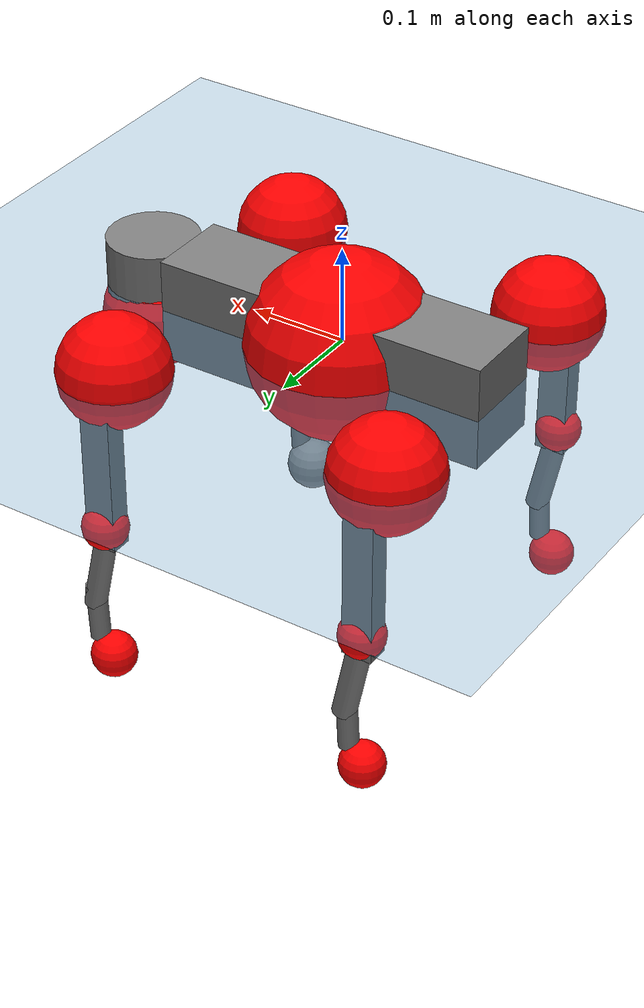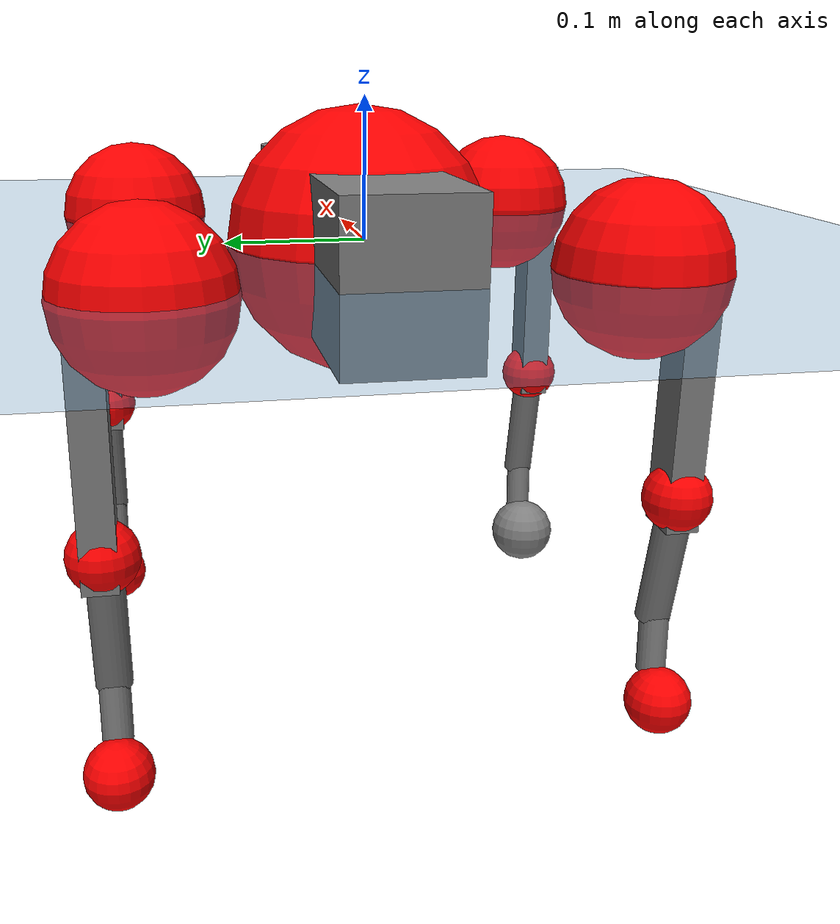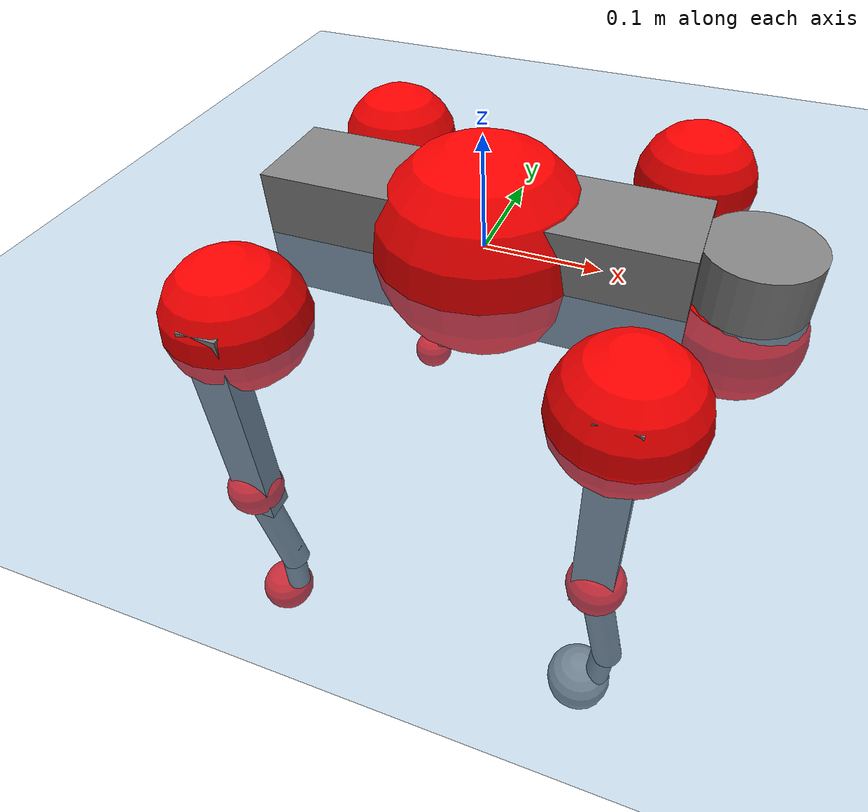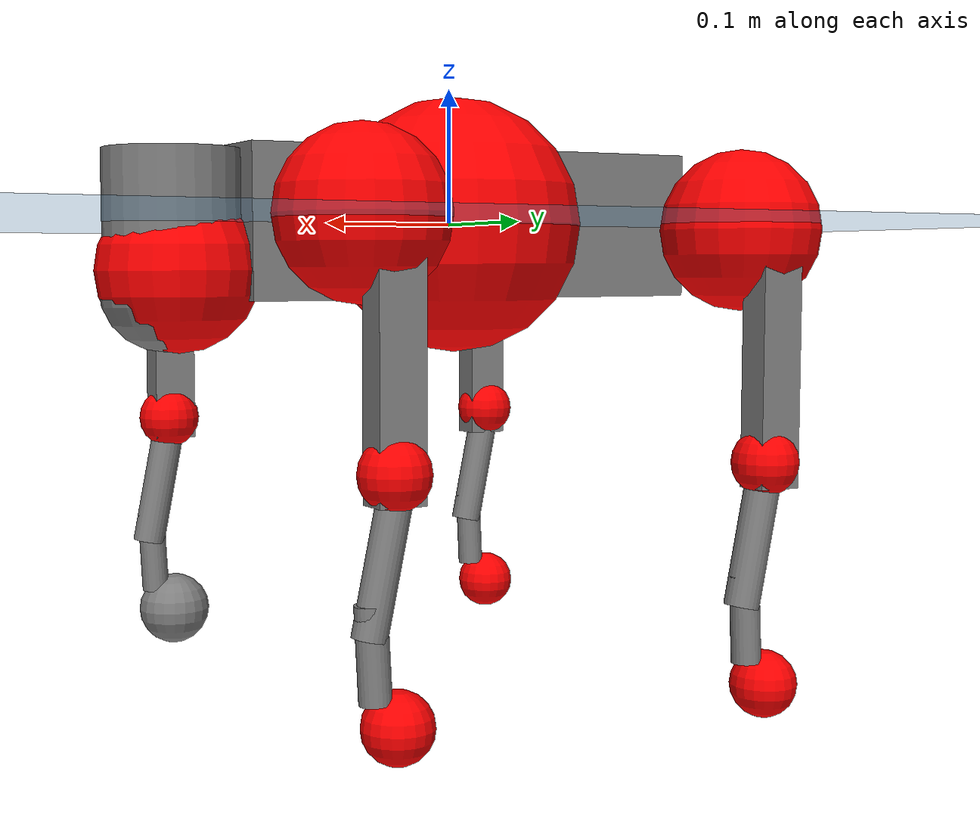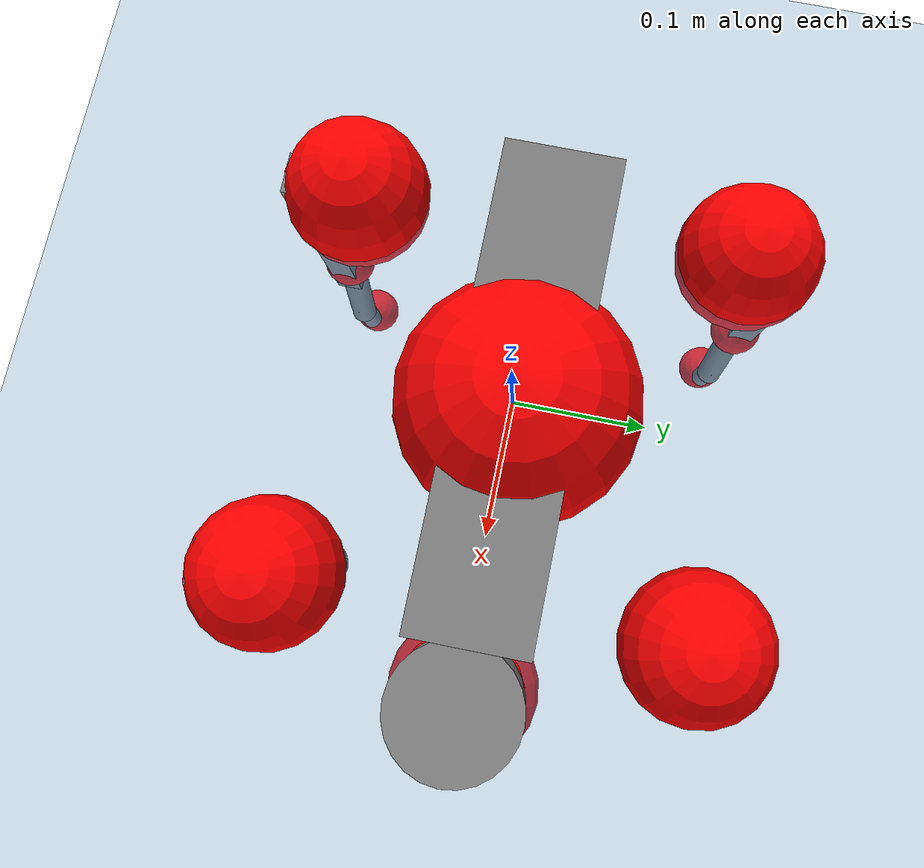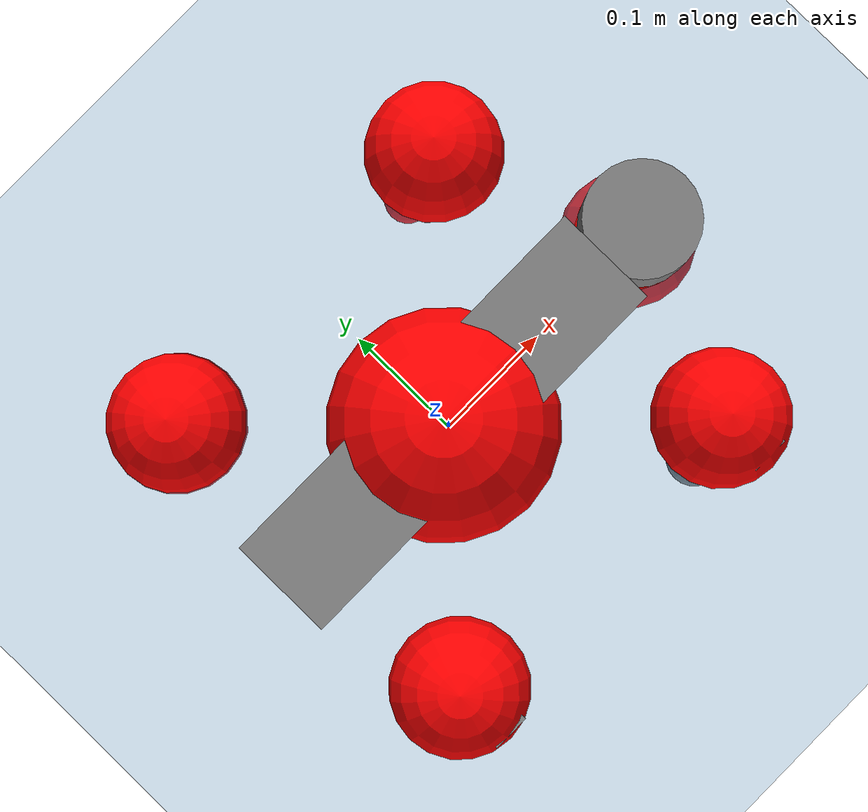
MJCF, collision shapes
<mujoco model="go2">
  <compiler angle="radian" assetdir="assets" balanceinertia="true" inertiafromgeom="false"/>

  <option timestep="0.005" density="1.2" viscosity="2e-05"/>

  <size nkey="1"/>

  <visual>
    <quality shadowsize="8192"/>
    <map shadowclip="0.5"/>
  </visual>

  <default>
    <default class="/">
      <geom contype="0" conaffinity="0" group="1" solref="-1000 -80"/>
      <site size="0.01 0.005 0.005" group="5"/>
      <general forcelimited="true" biastype="affine" gainprm="20" biasprm="0 -20 -0.5"/>
      <default class="go2">
        <joint armature="0.01" damping="0.01" frictionloss="0.2"/>
        <geom condim="1" margin="0.001"/>
        <default class="visual">
          <geom type="mesh" group="2"/>
        </default>
        <default class="collision">
          <geom group="3"/>
          <default class="foot">
            <geom size="0.022 0 0" condim="6" priority="1" friction="0.8 0.02 0.01" solimp="0.015 1 0.022"/>
          </default>
        </default>
        <default class="reward_collision_sphere">
          <geom group="5" rgba="1 0 0 1"/>
        </default>
      </default>
    </default>
  </default>

  <asset>
    <texture type="skybox" colorspace="auto" name="//unnamed_texture_0" builtin="gradient" rgb1="0.95 0.95 0.95" rgb2="0.95 0.95 0.95" width="100" height="600"/>
    <texture type="2d" colorspace="auto" name="texplane" builtin="checker" rgb1="0.345 0.575 0.748" rgb2="0.345 0.575 0.748" markrgb="1 1 1" width="512" height="512"/>
    <material name="MatPlane" class="/" texture="texplane" texuniform="true" texrepeat="2 2" specular="0.9"/>
    <material name="metal" class="/" rgba="0.9 0.95 0.95 1"/>
    <material name="black" class="/" rgba="0 0 0 1"/>
    <material name="white" class="/"/>
    <material name="gray" class="/" rgba="0.671705 0.692426 0.77427 1"/>
    <mesh name="base_0" class="/" file="base_0.obj"/>
    <mesh name="base_1" class="/" file="base_1.obj"/>
    <mesh name="base_2" class="/" file="base_2.obj"/>
    <mesh name="base_3" class="/" file="base_3.obj"/>
    <mesh name="base_4" class="/" file="base_4.obj"/>
    <mesh name="hip_0" class="/" file="hip_0.obj"/>
    <mesh name="hip_1" class="/" file="hip_1.obj"/>
    <mesh name="thigh_0" class="/" file="thigh_0.obj"/>
    <mesh name="thigh_1" class="/" file="thigh_1.obj"/>
    <mesh name="thigh_mirror_0" class="/" file="thigh_mirror_0.obj"/>
    <mesh name="thigh_mirror_1" class="/" file="thigh_mirror_1.obj"/>
    <mesh name="calf_0" class="/" file="calf_0.obj"/>
    <mesh name="calf_1" class="/" file="calf_1.obj"/>
    <mesh name="calf_mirror_0" class="/" file="calf_mirror_0.obj"/>
    <mesh name="calf_mirror_1" class="/" file="calf_mirror_1.obj"/>
    <mesh name="foot" class="/" file="foot.obj"/>
  </asset>

  <worldbody>
    <geom name="floor" class="/" size="100 100 0.125" type="plane" group="0" material="MatPlane"/>
    <light name="toplight_shadow" class="/" pos="0 0 5" dir="0.0990148 0.0990148 -0.990148" type="directional" ambient="0.04 0.04 0.04" diffuse="0.55 0.55 0.55" specular="0.12 0.12 0.12"/>
    <light name="toplight_fill" class="/" pos="0 0 5" dir="0.0990148 0.0990148 -0.990148" type="directional" castshadow="false" ambient="0.04 0.04 0.04" diffuse="0.3 0.3 0.3" specular="0.08 0.08 0.08"/>
    <body name="trunk" childclass="go2" pos="-0.00130262 0.00403288 -2.16503e-05" quat="0.999998 0.000985627 0.00164298 0.000716817">
      <inertial pos="0.0188252 0.00885282 -0.00841656" quat="-0.0123677 0.709424 0.00113957 0.704672" mass="5.99775" diaginertia="0.0346819 0.451619 0.00524318"/>
      <joint name="//unnamed_joint_0" type="free" armature="0" damping="0" frictionloss="0"/>
      <geom name="//unnamed_geom_1" class="visual" material="black" mesh="base_0"/>
      <geom name="//unnamed_geom_2" class="visual" material="black" mesh="base_1"/>
      <geom name="//unnamed_geom_3" class="visual" material="black" mesh="base_2"/>
      <geom name="//unnamed_geom_4" class="visual" material="white" mesh="base_3"/>
      <geom name="//unnamed_geom_5" class="visual" material="gray" mesh="base_4"/>
      <geom name="trunk_1" class="collision" size="0.177348 0.0440777 0.0537417" type="box"/>
      <geom name="trunk_2" class="collision" size="0.0471419 0.0424277" pos="0.21833 0 0.00731447" type="cylinder"/>
      <geom name="trunk_3" class="collision" size="0.0443134" pos="0.224459 0 -0.0438868"/>
      <geom name="//unnamed_geom_9" class="reward_collision_sphere" size="0.0942838"/>
      <geom name="//unnamed_geom_10" class="reward_collision_sphere" size="0.0565703" pos="0.2145 0 -0.0329151"/>
      <site name="imu" pos="-0.0295489 0.0100046 0.0409393" size="0.00942838"/>
      <camera name="track" pos="0 -2.66199 0" quat="0.707107 0.707107 0 0" mode="trackcom"/>
      <camera name="ego_camera" pos="0.239014 0 0.0329151" quat="-0.5 -0.5 0.5 0.5"/>
      <body name="FL_hip" pos="0.14986 0.0644076 0.00190804" quat="0.999999 0.00106457 -0.000314155 -3.05647e-05">
        <inertial pos="-0.0049627 0.00872358 0.00247948" quat="0.486454 0.463516 0.517074 0.530236" mass="0.58814" diaginertia="0.0002306 0.00257908 9.94626e-05"/>
        <joint name="FL_hip_joint" pos="0 0 0" axis="0.999884 0.00862755 0.0125457" range="-0.999652 1.01671" armature="0.00890699" damping="0.0232801" frictionloss="0.180397"/>
        <geom name="//unnamed_geom_11" class="visual" material="metal" mesh="hip_0"/>
        <geom name="//unnamed_geom_12" class="visual" material="gray" mesh="hip_1"/>
        <geom name="//unnamed_geom_13" class="collision" size="0.0433705 0.0188568" pos="0 0.10648 0" quat="0.707107 0.707107 0 0" type="cylinder"/>
        <geom name="//unnamed_geom_14" class="reward_collision_sphere" size="0.0565703" pos="0 0.0931696 0"/>
        <body name="FL_thigh" pos="-0.00580905 0.12473 0.00081035" quat="0.999989 -0.00146222 -0.00164804 0.00409393">
          <inertial pos="-0.0049598 -0.0390045 -0.025507" quat="0.827364 0.0824818 -0.0187503 0.555261" mass="0.946722" diaginertia="0.00172643 0.0219915 0.000186981"/>
          <joint name="FL_thigh_joint" pos="0 0 0" axis="-0.0010041 0.999766 -0.0215916" range="-1.48627 3.64748" armature="0.00528613" damping="0.0194363" frictionloss="0.21448"/>
          <geom name="//unnamed_geom_15" class="visual" material="metal" mesh="thigh_0"/>
          <geom name="//unnamed_geom_16" class="visual" material="gray" mesh="thigh_1"/>
          <geom name="//unnamed_geom_17" class="collision" size="0.100412 0.0115498 0.0160282" pos="0 0 -0.0778991" quat="0.707107 0 0.707107 0" type="box"/>
          <body name="FL_calf" pos="0.000857488 0.00139046 -0.159269" quat="0.999999 0.000330384 0.000792503 0.000548007">
            <inertial pos="0.0118838 0.00268877 -0.0976238" quat="0.708885 0.00106802 -0.00508857 0.705305" mass="0.210427" diaginertia="0.000407516 0.00576405 1.13343e-05"/>
            <joint name="FL_calf_joint" pos="0 0 0" axis="-0.000513773 0.999971 -0.00764491" range="-2.91008 -0.951457" armature="0.0108067" damping="0.0393026" frictionloss="0.186869"/>
            <geom name="//unnamed_geom_18" class="visual" material="gray" mesh="calf_0"/>
            <geom name="//unnamed_geom_19" class="visual" material="black" mesh="calf_1"/>
            <geom name="FL_calf0" class="collision" size="0.0113141 0.0565703" pos="0.00612857 0 -0.0438868" quat="0.994493 0 -0.104807 0" type="cylinder"/>
            <geom name="//unnamed_geom_21" class="collision" size="0.0103712 0.0306422" pos="0.0153214 0 -0.108254" quat="0.999688 0 0.0249974 0" type="cylinder"/>
            <geom name="//unnamed_geom_22" class="visual" pos="0 0 -0.155798" quat="1 0 0 0" material="black" mesh="foot"/>
            <geom name="FL_foot" class="foot" size="0.0222176" pos="-0.00153214 0 -0.155798"/>
            <geom name="//unnamed_geom_24" class="reward_collision_sphere" size="0.0235709"/>
            <geom name="//unnamed_geom_25" class="reward_collision_sphere" size="0.0235709" pos="-0.00153214 0 -0.155798"/>
            <site name="FL_foot" class="foot" pos="-0.00153214 0 -0.155798" size="0.00942838"/>
          </body>
        </body>
      </body>
      <body name="FR_hip" pos="0.157187 -0.0598229 0.00325544" quat="1 -0.000605679 0.000414168 0.000319013">
        <inertial pos="-0.00580167 -0.00333715 0.000834409" quat="0.479809 0.522202 0.518512 0.477739" mass="0.584128" diaginertia="0.000250886 0.0024866 0.000101768"/>
        <joint name="FR_hip_joint" pos="0 0 0" axis="0.999886 -0.000359615 0.0151271" stiffness="0.0496879" range="-1.00902 0.916565" armature="0.0100171" damping="0.0280136" frictionloss="0.19161"/>
        <geom name="//unnamed_geom_26" class="visual" pos="0 5.22301e-09 2.24026e-07" quat="4.63268e-05 1 0 0" material="metal" mesh="hip_0"/>
        <geom name="//unnamed_geom_27" class="visual" pos="0 8.46713e-09 -5.54101e-07" quat="4.63268e-05 1 0 0" material="gray" mesh="hip_1"/>
        <geom name="//unnamed_geom_28" class="collision" size="0.0433705 0.0188568" pos="0 -0.10648 0" quat="0.707107 0.707107 0 0" type="cylinder"/>
        <geom name="//unnamed_geom_29" class="reward_collision_sphere" size="0.0565703" pos="0 -0.0931696 0"/>
        <body name="FR_thigh" pos="0.000855887 -0.127129 0.00812719" quat="1 -0.000116576 -1.96435e-05 -2.27983e-06">
          <inertial pos="-0.00508245 0.0334214 -0.0317596" quat="0.551017 -0.0198622 0.082448 0.830173" mass="0.973076" diaginertia="0.00165696 0.0244637 0.0001844"/>
          <joint name="FR_thigh_joint" pos="0 0 0" axis="0.00710358 -0.999968 -0.00359152" range="-3.52707 1.56125" armature="0.0125066" damping="0" frictionloss="0.221182"/>
          <geom name="//unnamed_geom_30" class="visual" material="metal" mesh="thigh_mirror_0"/>
          <geom name="//unnamed_geom_31" class="visual" material="gray" mesh="thigh_mirror_1"/>
          <geom name="//unnamed_geom_32" class="collision" size="0.100412 0.0115498 0.0160282" pos="0 0 -0.0778991" quat="0.707107 0 0.707107 0" type="box"/>
          <body name="FR_calf" pos="0.00165849 -0.000304756 -0.162732" quat="1 -0.000155629 0.000559202 -0.000120779">
            <inertial pos="0.00833172 -0.00307143 -0.10223" quat="0.706015 -0.00344581 -0.00331193 0.70818" mass="0.179793" diaginertia="0.000351888 0.00510848 1.0255e-05"/>
            <joint name="FR_calf_joint" pos="0 0 0" axis="0.013184 -0.999904 0.0042685" stiffness="0.00108172" range="0.834379 2.73102" armature="0.00870101" damping="0.0484467" frictionloss="0.194531"/>
            <geom name="//unnamed_geom_33" class="visual" material="gray" mesh="calf_mirror_0"/>
            <geom name="//unnamed_geom_34" class="visual" material="black" mesh="calf_mirror_1"/>
            <geom name="FR_calf0" class="collision" size="0.0122569 0.0565703" pos="0.00766071 0 -0.0438868" quat="0.995004 0 -0.0998334 0" type="cylinder"/>
            <geom name="//unnamed_geom_36" class="collision" size="0.0103712 0.0306422" pos="0.0153214 0 -0.108254" quat="0.999688 0 0.0249974 0" type="cylinder"/>
            <geom name="//unnamed_geom_37" class="visual" pos="0 0 -0.155798" quat="1 0 0 0" material="black" mesh="foot"/>
            <geom name="FR_foot" class="foot" size="0.0277726" pos="-0.00153214 0 -0.155798"/>
            <geom name="//unnamed_geom_39" class="reward_collision_sphere" size="0.0235709"/>
            <geom name="//unnamed_geom_40" class="reward_collision_sphere" size="0.0235709" pos="-0.00153214 0 -0.155798"/>
            <site name="FR_foot" class="foot" pos="-0.00153214 0 -0.155798" size="0.00942838"/>
          </body>
        </body>
      </body>
      <body name="RL_hip" pos="-0.147262 0.0595704 -0.00601047" quat="0.999999 -0.000409977 -0.000884201 0.000409951">
        <inertial pos="0.00526862 0.00160385 -0.00350441" quat="0.509168 0.496233 0.496525 0.49796" mass="0.642681" diaginertia="0.000232075 0.00258246 9.7969e-05"/>
        <joint name="RL_hip_joint" pos="0 0 0" axis="-0.999997 -0.00182953 -0.00170268" range="-1.17686 1.05675" armature="0.00895778" damping="0.00367168" frictionloss="0.138476"/>
        <geom name="//unnamed_geom_41" class="visual" pos="-3.01631e-10 0 -5.91266e-08" quat="4.63268e-05 0 1 0" material="metal" mesh="hip_0"/>
        <geom name="//unnamed_geom_42" class="visual" pos="-4.8898e-10 0 -5.24369e-08" quat="4.63268e-05 0 1 0" material="gray" mesh="hip_1"/>
        <geom name="//unnamed_geom_43" class="collision" size="0.0433705 0.0188568" pos="0 0.10648 0" quat="0.707107 0.707107 0 0" type="cylinder"/>
        <geom name="//unnamed_geom_44" class="reward_collision_sphere" size="0.0565703" pos="0 0.0931696 0"/>
        <body name="RL_thigh" pos="0.000110841 0.128712 -5.97778e-05" quat="0.999992 -0.000142308 -0.00340472 -0.00198576">
          <inertial pos="-0.00216345 -0.0397184 -0.0244202" quat="0.816419 0.090323 -0.0329972 0.569398" mass="1.07964" diaginertia="0.00163455 0.0237142 0.000169106"/>
          <joint name="RL_thigh_joint" pos="0 0 0" axis="0.0145844 0.998907 0.0444013" range="-0.563713 4.49815" armature="0.00758859" damping="0" frictionloss="0.214811"/>
          <geom name="//unnamed_geom_45" class="visual" material="metal" mesh="thigh_0"/>
          <geom name="//unnamed_geom_46" class="visual" material="gray" mesh="thigh_1"/>
          <geom name="//unnamed_geom_47" class="collision" size="0.100412 0.0115498 0.0160282" pos="0 0 -0.0778991" quat="0.707107 0 0.707107 0" type="box"/>
          <body name="RL_calf" pos="0.00219709 -0.00195421 -0.160755" quat="0.999999 -0.000836969 0.00088767 0.000119083">
            <inertial pos="0.0064107 -0.00696778 -0.105445" quat="0.715611 -0.00518534 -0.0072514 0.698442" mass="0.206052" diaginertia="0.000424019 0.00661151 1.2115e-05"/>
            <joint name="RL_calf_joint" pos="0 0 0" axis="0.00108024 0.999999 0.00120661" range="-2.90118 -0.819337" armature="0.005065" damping="0" frictionloss="0.223586"/>
            <geom name="//unnamed_geom_48" class="visual" material="gray" mesh="calf_0"/>
            <geom name="//unnamed_geom_49" class="visual" material="black" mesh="calf_1"/>
            <geom name="RL_calf0" class="collision" size="0.0122569 0.0565703" pos="0.00766071 0 -0.0438868" quat="0.995004 0 -0.0998334 0" type="cylinder"/>
            <geom name="//unnamed_geom_51" class="collision" size="0.0103712 0.0306422" pos="0.0153214 0 -0.108254" quat="0.999688 0 0.0249974 0" type="cylinder"/>
            <geom name="//unnamed_geom_52" class="visual" pos="0 0 -0.155798" quat="1 0 0 0" material="black" mesh="foot"/>
            <geom name="RL_foot" class="foot" size="0.023548" pos="-0.00153214 0 -0.155798"/>
            <geom name="//unnamed_geom_54" class="reward_collision_sphere" size="0.0235709"/>
            <geom name="//unnamed_geom_55" class="reward_collision_sphere" size="0.0235709" pos="-0.00153214 0 -0.155798"/>
            <site name="RL_foot" class="foot" pos="-0.00153214 0 -0.155798" size="0.00942838"/>
          </body>
        </body>
      </body>
      <body name="RR_hip" pos="-0.139383 -0.0607 0.000440993" quat="0.999988 0.00195324 -0.00447026 0.000685069">
        <inertial pos="0.00603213 -0.00260399 -0.00165002" quat="0.500863 0.494162 0.501512 0.503415" mass="0.587886" diaginertia="0.000238313 0.00255698 9.0308e-05"/>
        <joint name="RR_hip_joint" pos="0 0 0" axis="-0.999966 0.00333229 0.00758669" range="-1.0713 0.963821" armature="0.00585083" damping="0.0068467" frictionloss="0.156773"/>
        <geom name="//unnamed_geom_56" class="visual" pos="3.21189e-10 5.22301e-09 -2.83152e-07" quat="2.14617e-09 4.63268e-05 4.63268e-05 -1" material="metal" mesh="hip_0"/>
        <geom name="//unnamed_geom_57" class="visual" pos="4.40605e-10 8.46713e-09 5.01665e-07" quat="2.14617e-09 4.63268e-05 4.63268e-05 -1" material="gray" mesh="hip_1"/>
        <geom name="//unnamed_geom_58" class="collision" size="0.0433705 0.0188568" pos="0 -0.10648 0" quat="0.707107 0.707107 0 0" type="cylinder"/>
        <geom name="//unnamed_geom_59" class="reward_collision_sphere" size="0.0565703" pos="0 -0.0931696 0"/>
        <body name="RR_thigh" pos="0.004186 -0.132738 0.000290086" quat="1 7.51924e-05 0.000185226 -0.000494813">
          <inertial pos="-0.00324664 0.0347995 -0.0254869" quat="0.551756 -0.0269966 0.0801067 0.82971" mass="0.978185" diaginertia="0.00154899 0.0246092 0.00019512"/>
          <joint name="RR_thigh_joint" pos="0 0 0" axis="-0.00844284 -0.999962 -0.00229383" range="-4.49925 0.334364" armature="0.0135577" damping="0" frictionloss="0.169364"/>
          <geom name="//unnamed_geom_60" class="visual" material="metal" mesh="thigh_mirror_0"/>
          <geom name="//unnamed_geom_61" class="visual" material="gray" mesh="thigh_mirror_1"/>
          <geom name="//unnamed_geom_62" class="collision" size="0.100412 0.0115498 0.0160282" pos="0 0 -0.0778991" quat="0.707107 0 0.707107 0" type="box"/>
          <body name="RR_calf" pos="-0.00326638 -0.000176488 -0.157115" quat="0.999999 -0.00107644 9.04671e-05 0.000358119">
            <inertial pos="0.00768047 0.00273298 -0.102527" quat="0.704614 -0.00673789 0.000854555 0.709558" mass="0.190943" diaginertia="0.000392144 0.0059247 1.07803e-05"/>
            <joint name="RR_calf_joint" pos="0 0 0" axis="0.026651 -0.999628 -0.00571418" range="0.696676 2.68358" armature="0.00896036" damping="0.00071746" frictionloss="0.1634"/>
            <geom name="//unnamed_geom_63" class="visual" material="gray" mesh="calf_mirror_0"/>
            <geom name="//unnamed_geom_64" class="visual" material="black" mesh="calf_mirror_1"/>
            <geom name="RR_calf0" class="collision" size="0.0122569 0.0565703" pos="0.00766071 0 -0.0438868" quat="0.995004 0 -0.0998334 0" type="cylinder"/>
            <geom name="//unnamed_geom_66" class="collision" size="0.0103712 0.0306422" pos="0.0153214 0 -0.108254" quat="0.999688 0 0.0249974 0" type="cylinder"/>
            <geom name="//unnamed_geom_67" class="visual" pos="0 0 -0.155798" quat="1 0 0 0" material="black" mesh="foot"/>
            <geom name="RR_foot" class="foot" size="0.013101" pos="-0.00153214 0 -0.155798"/>
            <geom name="//unnamed_geom_69" class="reward_collision_sphere" size="0.0235709"/>
            <geom name="//unnamed_geom_70" class="reward_collision_sphere" size="0.0235709" pos="-0.00153214 0 -0.155798"/>
            <site name="RR_foot" class="foot" pos="-0.00153214 0 -0.155798" size="0.00942838"/>
          </body>
        </body>
      </body>
    </body>
  </worldbody>

  <contact>
    <pair class="/" geom1="floor" geom2="FL_foot" name="//unnamed_contact_0"/>
    <pair class="/" geom1="floor" geom2="FR_foot" name="//unnamed_contact_1"/>
    <pair class="/" geom1="floor" geom2="RL_foot" name="//unnamed_contact_2"/>
    <pair class="/" geom1="floor" geom2="RR_foot" name="//unnamed_contact_3"/>
  </contact>

  <actuator>
    <general name="FL_hip" class="/" joint="FL_hip_joint" forcerange="-20.8515 20.8515" gainprm="18.6421" biasprm="0 -18.6421 -0.493324"/>
    <general name="FL_thigh" class="/" joint="FL_thigh_joint" forcerange="-22.2247 22.2247" gainprm="18.6421" biasprm="0 -18.6421 -0.493324"/>
    <general name="FL_calf" class="/" joint="FL_calf_joint" forcerange="-45.8295 45.8295" gainprm="18.6421" biasprm="0 -18.6421 -0.493324"/>
    <general name="FR_hip" class="/" joint="FR_hip_joint" forcerange="-24.1925 24.1925" gainprm="18.6421" biasprm="0 -18.6421 -0.493324"/>
    <general name="FR_thigh" class="/" joint="FR_thigh_joint" forcerange="-20.7336 20.7336" gainprm="18.6421" biasprm="0 -18.6421 -0.493324"/>
    <general name="FR_calf" class="/" joint="FR_calf_joint" forcerange="-50.5758 50.5758" gainprm="18.6421" biasprm="0 -18.6421 -0.493324"/>
    <general name="RL_hip" class="/" joint="RL_hip_joint" forcerange="-22.5477 22.5477" gainprm="18.6421" biasprm="0 -18.6421 -0.493324"/>
    <general name="RL_thigh" class="/" joint="RL_thigh_joint" forcerange="-21.1175 21.1175" gainprm="18.6421" biasprm="0 -18.6421 -0.493324"/>
    <general name="RL_calf" class="/" joint="RL_calf_joint" forcerange="-43.7482 43.7482" gainprm="18.6421" biasprm="0 -18.6421 -0.493324"/>
    <general name="RR_hip" class="/" joint="RR_hip_joint" forcerange="-23.9919 23.9919" gainprm="18.6421" biasprm="0 -18.6421 -0.493324"/>
    <general name="RR_thigh" class="/" joint="RR_thigh_joint" forcerange="-21.7318 21.7318" gainprm="18.6421" biasprm="0 -18.6421 -0.493324"/>
    <general name="RR_calf" class="/" joint="RR_calf_joint" forcerange="-30.9693 30.9693" gainprm="18.6421" biasprm="0 -18.6421 -0.493324"/>
  </actuator>

  <sensor>
    <gyro site="imu" name="imu_angular_velocity"/>
    <velocimeter site="imu" name="imu_linear_velocity"/>
    <framelinvel objtype="site" objname="FL_foot" name="FL_foot_global_linear_velocity"/>
    <framelinvel objtype="site" objname="FR_foot" name="FR_foot_global_linear_velocity"/>
    <framelinvel objtype="site" objname="RL_foot" name="RL_foot_global_linear_velocity"/>
    <framelinvel objtype="site" objname="RR_foot" name="RR_foot_global_linear_velocity"/>
  </sensor>

  <keyframe>
    <key name="home" qpos="0 0 0.325 1 0 0 0 0.1 0.8 -1.5 -0.1 -0.8 1.5 -0.1 0.8 -1.5 0.1 -0.8 1.5"/>
  </keyframe>
</mujoco>
